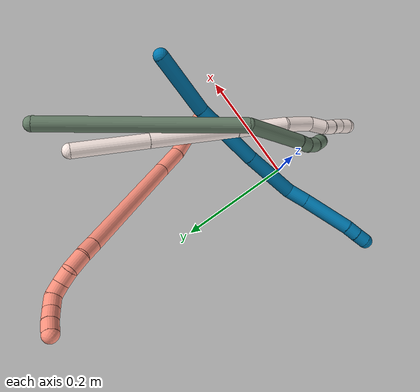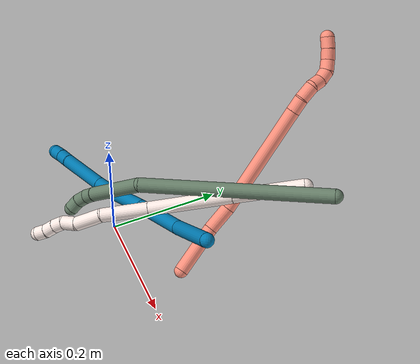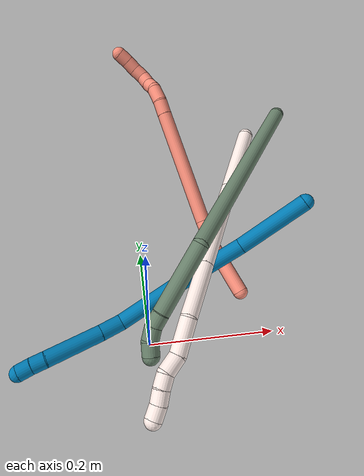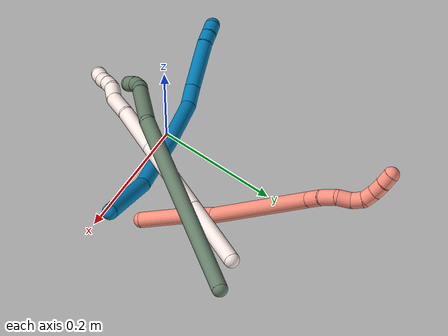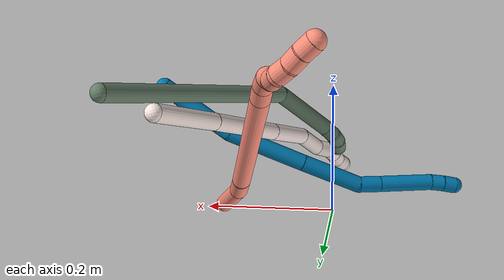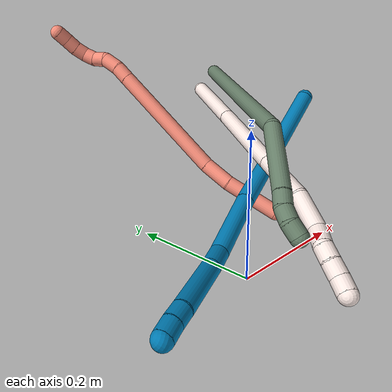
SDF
<sdf version="1.7">
 <world name="default">
  <model name="9">
   <static>0</static>
   <link name="9">
    <collision name="collision-cylinder-e_1_1_4">
     <pose>-0.044915 -0.034894 -0.0148 1.97195 -0.86987 -1.22378</pose>
     <geometry><cylinder><radius>0.0125</radius><length>0.117541</length></cylinder></geometry>
     <surface>
      <friction><ode><mu>1.16</mu><mu2>1.16</mu2><slip1>0</slip1><slip2>0</slip2></ode></friction>
      <contact><ode><kp>1e+06</kp><kd>1</kd><max_vel>0</max_vel><min_depth>0.001</min_depth></ode></contact>
     </surface>
    </collision>
    <visual name="visual-cylinder-e_1_1_4">
     <pose>-0.044915 -0.034894 -0.0148 1.97195 -0.86987 -1.22378</pose>
     <geometry><cylinder><radius>0.0125</radius><length>0.117541</length></cylinder></geometry>
     <material><ambient>0 0.490196 0.709804 1</ambient></material>
    </visual>
    <collision name="collision-cylinder-e_2_4_5">
     <pose>-0.141696 -0.092978 -0.05093 2.31441 -1.02488 -1.81651</pose>
     <geometry><cylinder><radius>0.0125</radius><length>0.121372</length></cylinder></geometry>
     <surface>
      <friction><ode><mu>1.16</mu><mu2>1.16</mu2><slip1>0</slip1><slip2>0</slip2></ode></friction>
      <contact><ode><kp>1e+06</kp><kd>1</kd><max_vel>0</max_vel><min_depth>0.001</min_depth></ode></contact>
     </surface>
    </collision>
    <visual name="visual-cylinder-e_2_4_5">
     <pose>-0.141696 -0.092978 -0.05093 2.31441 -1.02488 -1.81651</pose>
     <geometry><cylinder><radius>0.0125</radius><length>0.121372</length></cylinder></geometry>
     <material><ambient>0 0.490196 0.709804 1</ambient></material>
    </visual>
    <collision name="collision-cylinder-e_3_5_6">
     <pose>-0.236172 -0.133099 -0.087697 2.31011 -1.07744 -1.86922</pose>
     <geometry><cylinder><radius>0.0125</radius><length>0.09676</length></cylinder></geometry>
     <surface>
      <friction><ode><mu>1.16</mu><mu2>1.16</mu2><slip1>0</slip1><slip2>0</slip2></ode></friction>
      <contact><ode><kp>1e+06</kp><kd>1</kd><max_vel>0</max_vel><min_depth>0.001</min_depth></ode></contact>
     </surface>
    </collision>
    <visual name="visual-cylinder-e_3_5_6">
     <pose>-0.236172 -0.133099 -0.087697 2.31011 -1.07744 -1.86922</pose>
     <geometry><cylinder><radius>0.0125</radius><length>0.09676</length></cylinder></geometry>
     <material><ambient>0 0.490196 0.709804 1</ambient></material>
    </visual>
    <collision name="collision-cylinder-e_4_6_7">
     <pose>-0.294453 -0.150039 -0.111122 3.14046 -1.09944 -3.13974</pose>
     <geometry><cylinder><radius>0.0125</radius><length>0.035177</length></cylinder></geometry>
     <surface>
      <friction><ode><mu>1.16</mu><mu2>1.16</mu2><slip1>0</slip1><slip2>0</slip2></ode></friction>
      <contact><ode><kp>1e+06</kp><kd>1</kd><max_vel>0</max_vel><min_depth>0.001</min_depth></ode></contact>
     </surface>
    </collision>
    <visual name="visual-cylinder-e_4_6_7">
     <pose>-0.294453 -0.150039 -0.111122 3.14046 -1.09944 -3.13974</pose>
     <geometry><cylinder><radius>0.0125</radius><length>0.035177</length></cylinder></geometry>
     <material><ambient>0 0.490196 0.709804 1</ambient></material>
    </visual>
    <collision name="collision-cylinder-e_5_7_8">
     <pose>-0.348085 -0.150214 -0.140475 3.13381 -1.05813 -3.12829</pose>
     <geometry><cylinder><radius>0.0125</radius><length>0.087125</length></cylinder></geometry>
     <surface>
      <friction><ode><mu>1.16</mu><mu2>1.16</mu2><slip1>0</slip1><slip2>0</slip2></ode></friction>
      <contact><ode><kp>1e+06</kp><kd>1</kd><max_vel>0</max_vel><min_depth>0.001</min_depth></ode></contact>
     </surface>
    </collision>
    <visual name="visual-cylinder-e_5_7_8">
     <pose>-0.348085 -0.150214 -0.140475 3.13381 -1.05813 -3.12829</pose>
     <geometry><cylinder><radius>0.0125</radius><length>0.087125</length></cylinder></geometry>
     <material><ambient>0 0.490196 0.709804 1</ambient></material>
    </visual>
    <collision name="collision-cylinder-e_6_8_9">
     <pose>-0.395185 -0.151909 -0.167075 2.85734 -1.03284 -2.64786</pose>
     <geometry><cylinder><radius>0.0125</radius><length>0.02128</length></cylinder></geometry>
     <surface>
      <friction><ode><mu>1.16</mu><mu2>1.16</mu2><slip1>0</slip1><slip2>0</slip2></ode></friction>
      <contact><ode><kp>1e+06</kp><kd>1</kd><max_vel>0</max_vel><min_depth>0.001</min_depth></ode></contact>
     </surface>
    </collision>
    <visual name="visual-cylinder-e_6_8_9">
     <pose>-0.395185 -0.151909 -0.167075 2.85734 -1.03284 -2.64786</pose>
     <geometry><cylinder><radius>0.0125</radius><length>0.02128</length></cylinder></geometry>
     <material><ambient>0 0.490196 0.709804 1</ambient></material>
    </visual>
    <collision name="collision-cylinder-e_7_9_2">
     <pose>-0.413509 -0.155329 -0.176737 2.73796 -1.08801 -2.48926</pose>
     <geometry><cylinder><radius>0.0125</radius><length>0.020745</length></cylinder></geometry>
     <surface>
      <friction><ode><mu>1.16</mu><mu2>1.16</mu2><slip1>0</slip1><slip2>0</slip2></ode></friction>
      <contact><ode><kp>1e+06</kp><kd>1</kd><max_vel>0</max_vel><min_depth>0.001</min_depth></ode></contact>
     </surface>
    </collision>
    <visual name="visual-cylinder-e_7_9_2">
     <pose>-0.413509 -0.155329 -0.176737 2.73796 -1.08801 -2.48926</pose>
     <geometry><cylinder><radius>0.0125</radius><length>0.020745</length></cylinder></geometry>
     <material><ambient>0 0.490196 0.709804 1</ambient></material>
    </visual>
    <collision name="collision-sphere-2">
     <pose>-0.422696 -0.15722 -0.181165 0 -0 0</pose>
     <geometry><sphere><radius>0.0125</radius></sphere></geometry>
     <surface>
      <friction><ode><mu>1.16</mu><mu2>1.16</mu2><slip1>0</slip1><slip2>0</slip2></ode></friction>
      <contact><ode><kp>1e+06</kp><kd>1</kd><max_vel>0</max_vel><min_depth>0.001</min_depth></ode></contact>
     </surface>
    </collision>
    <visual name="visual-sphere-2">
     <pose>-0.422696 -0.15722 -0.181165 0 -0 0</pose>
     <geometry><sphere><radius>0.0125</radius></sphere></geometry>
     <material><ambient>0 0.490196 0.709804 1</ambient></material>
    </visual>
    <collision name="collision-sphere-9">
     <pose>-0.404322 -0.153438 -0.172308 0 -0 0</pose>
     <geometry><sphere><radius>0.0125</radius></sphere></geometry>
     <surface>
      <friction><ode><mu>1.16</mu><mu2>1.16</mu2><slip1>0</slip1><slip2>0</slip2></ode></friction>
      <contact><ode><kp>1e+06</kp><kd>1</kd><max_vel>0</max_vel><min_depth>0.001</min_depth></ode></contact>
     </surface>
    </collision>
    <visual name="visual-sphere-9">
     <pose>-0.404322 -0.153438 -0.172308 0 -0 0</pose>
     <geometry><sphere><radius>0.0125</radius></sphere></geometry>
     <material><ambient>0 0.490196 0.709804 1</ambient></material>
    </visual>
    <collision name="collision-sphere-4">
     <pose>-0.08983 -0.069787 -0.0296 0 -0 0</pose>
     <geometry><sphere><radius>0.0125</radius></sphere></geometry>
     <surface>
      <friction><ode><mu>1.16</mu><mu2>1.16</mu2><slip1>0</slip1><slip2>0</slip2></ode></friction>
      <contact><ode><kp>1e+06</kp><kd>1</kd><max_vel>0</max_vel><min_depth>0.001</min_depth></ode></contact>
     </surface>
    </collision>
    <visual name="visual-sphere-4">
     <pose>-0.08983 -0.069787 -0.0296 0 -0 0</pose>
     <geometry><sphere><radius>0.0125</radius></sphere></geometry>
     <material><ambient>0 0.490196 0.709804 1</ambient></material>
    </visual>
    <collision name="collision-sphere-1">
     <geometry><sphere><radius>0.0125</radius></sphere></geometry>
     <surface>
      <friction><ode><mu>1.16</mu><mu2>1.16</mu2><slip1>0</slip1><slip2>0</slip2></ode></friction>
      <contact><ode><kp>1e+06</kp><kd>1</kd><max_vel>0</max_vel><min_depth>0.001</min_depth></ode></contact>
     </surface>
    </collision>
    <visual name="visual-sphere-1">
     <geometry><sphere><radius>0.0125</radius></sphere></geometry>
     <material><ambient>0 0.490196 0.709804 1</ambient></material>
    </visual>
    <collision name="collision-sphere-8">
     <pose>-0.386048 -0.15038 -0.161842 0 -0 0</pose>
     <geometry><sphere><radius>0.0125</radius></sphere></geometry>
     <surface>
      <friction><ode><mu>1.16</mu><mu2>1.16</mu2><slip1>0</slip1><slip2>0</slip2></ode></friction>
      <contact><ode><kp>1e+06</kp><kd>1</kd><max_vel>0</max_vel><min_depth>0.001</min_depth></ode></contact>
     </surface>
    </collision>
    <visual name="visual-sphere-8">
     <pose>-0.386048 -0.15038 -0.161842 0 -0 0</pose>
     <geometry><sphere><radius>0.0125</radius></sphere></geometry>
     <material><ambient>0 0.490196 0.709804 1</ambient></material>
    </visual>
    <collision name="collision-sphere-5">
     <pose>-0.193561 -0.116169 -0.072259 0 -0 0</pose>
     <geometry><sphere><radius>0.0125</radius></sphere></geometry>
     <surface>
      <friction><ode><mu>1.16</mu><mu2>1.16</mu2><slip1>0</slip1><slip2>0</slip2></ode></friction>
      <contact><ode><kp>1e+06</kp><kd>1</kd><max_vel>0</max_vel><min_depth>0.001</min_depth></ode></contact>
     </surface>
    </collision>
    <visual name="visual-sphere-5">
     <pose>-0.193561 -0.116169 -0.072259 0 -0 0</pose>
     <geometry><sphere><radius>0.0125</radius></sphere></geometry>
     <material><ambient>0 0.490196 0.709804 1</ambient></material>
    </visual>
    <collision name="collision-sphere-6">
     <pose>-0.278782 -0.150029 -0.103135 0 -0 0</pose>
     <geometry><sphere><radius>0.0125</radius></sphere></geometry>
     <surface>
      <friction><ode><mu>1.16</mu><mu2>1.16</mu2><slip1>0</slip1><slip2>0</slip2></ode></friction>
      <contact><ode><kp>1e+06</kp><kd>1</kd><max_vel>0</max_vel><min_depth>0.001</min_depth></ode></contact>
     </surface>
    </collision>
    <visual name="visual-sphere-6">
     <pose>-0.278782 -0.150029 -0.103135 0 -0 0</pose>
     <geometry><sphere><radius>0.0125</radius></sphere></geometry>
     <material><ambient>0 0.490196 0.709804 1</ambient></material>
    </visual>
    <collision name="collision-sphere-7">
     <pose>-0.310123 -0.150048 -0.119109 0 -0 0</pose>
     <geometry><sphere><radius>0.0125</radius></sphere></geometry>
     <surface>
      <friction><ode><mu>1.16</mu><mu2>1.16</mu2><slip1>0</slip1><slip2>0</slip2></ode></friction>
      <contact><ode><kp>1e+06</kp><kd>1</kd><max_vel>0</max_vel><min_depth>0.001</min_depth></ode></contact>
     </surface>
    </collision>
    <visual name="visual-sphere-7">
     <pose>-0.310123 -0.150048 -0.119109 0 -0 0</pose>
     <geometry><sphere><radius>0.0125</radius></sphere></geometry>
     <material><ambient>0 0.490196 0.709804 1</ambient></material>
    </visual>
    <inertial>
     <pose>-0.206004 -0.10617 -0.079553 0 -0 0</pose>
     <mass>0.5</mass>
     <inertia>
      <ixx>-0.000264</ixx>
      <ixy>0</ixy>
      <ixz>0</ixz>
      <iyy>0.000113</iyy>
      <iyz>0</iyz>
      <izz>0.000523</izz>
     </inertia>
    </inertial>
   </link>
   <pose>0.245175 0.073677 0.207108 2.13372 -0.33386 0.814975</pose>
  </model>
  <model name="11">
   <static>0</static>
   <link name="11">
    <collision name="collision-cylinder-e_1_1_4">
     <pose>-0.016673 -0.049417 -0.033737 2.16982 -0.271749 -0.506631</pose>
     <geometry><cylinder><radius>0.0125</radius><length>0.124229</length></cylinder></geometry>
     <surface>
      <friction><ode><mu>1.16</mu><mu2>1.16</mu2><slip1>0</slip1><slip2>0</slip2></ode></friction>
      <contact><ode><kp>1e+06</kp><kd>1</kd><max_vel>0</max_vel><min_depth>0.001</min_depth></ode></contact>
     </surface>
    </collision>
    <visual name="visual-cylinder-e_1_1_4">
     <pose>-0.016673 -0.049417 -0.033737 2.16982 -0.271749 -0.506631</pose>
     <geometry><cylinder><radius>0.0125</radius><length>0.124229</length></cylinder></geometry>
     <material><ambient>1 0.933333 0.909804 1</ambient></material>
    </visual>
    <collision name="collision-cylinder-e_2_4_5">
     <pose>-0.052394 -0.15819 -0.107491 2.16399 -0.260074 -0.482206</pose>
     <geometry><cylinder><radius>0.0125</radius><length>0.148152</length></cylinder></geometry>
     <surface>
      <friction><ode><mu>1.16</mu><mu2>1.16</mu2><slip1>0</slip1><slip2>0</slip2></ode></friction>
      <contact><ode><kp>1e+06</kp><kd>1</kd><max_vel>0</max_vel><min_depth>0.001</min_depth></ode></contact>
     </surface>
    </collision>
    <visual name="visual-cylinder-e_2_4_5">
     <pose>-0.052394 -0.15819 -0.107491 2.16399 -0.260074 -0.482206</pose>
     <geometry><cylinder><radius>0.0125</radius><length>0.148152</length></cylinder></geometry>
     <material><ambient>1 0.933333 0.909804 1</ambient></material>
    </visual>
    <collision name="collision-cylinder-e_3_5_6">
     <pose>-0.082689 -0.251865 -0.171114 2.17332 -0.263706 -0.49408</pose>
     <geometry><cylinder><radius>0.0125</radius><length>0.086292</length></cylinder></geometry>
     <surface>
      <friction><ode><mu>1.16</mu><mu2>1.16</mu2><slip1>0</slip1><slip2>0</slip2></ode></friction>
      <contact><ode><kp>1e+06</kp><kd>1</kd><max_vel>0</max_vel><min_depth>0.001</min_depth></ode></contact>
     </surface>
    </collision>
    <visual name="visual-cylinder-e_3_5_6">
     <pose>-0.082689 -0.251865 -0.171114 2.17332 -0.263706 -0.49408</pose>
     <geometry><cylinder><radius>0.0125</radius><length>0.086292</length></cylinder></geometry>
     <material><ambient>1 0.933333 0.909804 1</ambient></material>
    </visual>
    <collision name="collision-cylinder-e_4_6_7">
     <pose>-0.094895 -0.310238 -0.205991 2.00895 -0.036107 -0.056782</pose>
     <geometry><cylinder><radius>0.0125</radius><length>0.053161</length></cylinder></geometry>
     <surface>
      <friction><ode><mu>1.16</mu><mu2>1.16</mu2><slip1>0</slip1><slip2>0</slip2></ode></friction>
      <contact><ode><kp>1e+06</kp><kd>1</kd><max_vel>0</max_vel><min_depth>0.001</min_depth></ode></contact>
     </surface>
    </collision>
    <visual name="visual-cylinder-e_4_6_7">
     <pose>-0.094895 -0.310238 -0.205991 2.00895 -0.036107 -0.056782</pose>
     <geometry><cylinder><radius>0.0125</radius><length>0.053161</length></cylinder></geometry>
     <material><ambient>1 0.933333 0.909804 1</ambient></material>
    </visual>
    <collision name="collision-cylinder-e_5_7_8">
     <pose>-0.095877 -0.343926 -0.227129 2.36822 -0.001646 -0.004042</pose>
     <geometry><cylinder><radius>0.0125</radius><length>0.027583</length></cylinder></geometry>
     <surface>
      <friction><ode><mu>1.16</mu><mu2>1.16</mu2><slip1>0</slip1><slip2>0</slip2></ode></friction>
      <contact><ode><kp>1e+06</kp><kd>1</kd><max_vel>0</max_vel><min_depth>0.001</min_depth></ode></contact>
     </surface>
    </collision>
    <visual name="visual-cylinder-e_5_7_8">
     <pose>-0.095877 -0.343926 -0.227129 2.36822 -0.001646 -0.004042</pose>
     <geometry><cylinder><radius>0.0125</radius><length>0.027583</length></cylinder></geometry>
     <material><ambient>1 0.933333 0.909804 1</ambient></material>
    </visual>
    <collision name="collision-cylinder-e_6_8_9">
     <pose>-0.095943 -0.362897 -0.240931 1.96953 -0.004256 -0.006411</pose>
     <geometry><cylinder><radius>0.0125</radius><length>0.020264</length></cylinder></geometry>
     <surface>
      <friction><ode><mu>1.16</mu><mu2>1.16</mu2><slip1>0</slip1><slip2>0</slip2></ode></friction>
      <contact><ode><kp>1e+06</kp><kd>1</kd><max_vel>0</max_vel><min_depth>0.001</min_depth></ode></contact>
     </surface>
    </collision>
    <visual name="visual-cylinder-e_6_8_9">
     <pose>-0.095943 -0.362897 -0.240931 1.96953 -0.004256 -0.006411</pose>
     <geometry><cylinder><radius>0.0125</radius><length>0.020264</length></cylinder></geometry>
     <material><ambient>1 0.933333 0.909804 1</ambient></material>
    </visual>
    <collision name="collision-cylinder-e_7_9_10">
     <pose>-0.095872 -0.381983 -0.24767 1.85091 0.011311 0.015024</pose>
     <geometry><cylinder><radius>0.0125</radius><length>0.020291</length></cylinder></geometry>
     <surface>
      <friction><ode><mu>1.16</mu><mu2>1.16</mu2><slip1>0</slip1><slip2>0</slip2></ode></friction>
      <contact><ode><kp>1e+06</kp><kd>1</kd><max_vel>0</max_vel><min_depth>0.001</min_depth></ode></contact>
     </surface>
    </collision>
    <visual name="visual-cylinder-e_7_9_10">
     <pose>-0.095872 -0.381983 -0.24767 1.85091 0.011311 0.015024</pose>
     <geometry><cylinder><radius>0.0125</radius><length>0.020291</length></cylinder></geometry>
     <material><ambient>1 0.933333 0.909804 1</ambient></material>
    </visual>
    <collision name="collision-cylinder-e_8_10_2">
     <pose>-0.095811 -0.400639 -0.255052 2.04559 -0.005416 -0.008873</pose>
     <geometry><cylinder><radius>0.0125</radius><length>0.020028</length></cylinder></geometry>
     <surface>
      <friction><ode><mu>1.16</mu><mu2>1.16</mu2><slip1>0</slip1><slip2>0</slip2></ode></friction>
      <contact><ode><kp>1e+06</kp><kd>1</kd><max_vel>0</max_vel><min_depth>0.001</min_depth></ode></contact>
     </surface>
    </collision>
    <visual name="visual-cylinder-e_8_10_2">
     <pose>-0.095811 -0.400639 -0.255052 2.04559 -0.005416 -0.008873</pose>
     <geometry><cylinder><radius>0.0125</radius><length>0.020028</length></cylinder></geometry>
     <material><ambient>1 0.933333 0.909804 1</ambient></material>
    </visual>
    <collision name="collision-sphere-2">
     <pose>-0.095865 -0.409545 -0.25963 0 -0 0</pose>
     <geometry><sphere><radius>0.0125</radius></sphere></geometry>
     <surface>
      <friction><ode><mu>1.16</mu><mu2>1.16</mu2><slip1>0</slip1><slip2>0</slip2></ode></friction>
      <contact><ode><kp>1e+06</kp><kd>1</kd><max_vel>0</max_vel><min_depth>0.001</min_depth></ode></contact>
     </surface>
    </collision>
    <visual name="visual-sphere-2">
     <pose>-0.095865 -0.409545 -0.25963 0 -0 0</pose>
     <geometry><sphere><radius>0.0125</radius></sphere></geometry>
     <material><ambient>1 0.933333 0.909804 1</ambient></material>
    </visual>
    <collision name="collision-sphere-10">
     <pose>-0.095757 -0.391733 -0.250475 0 -0 0</pose>
     <geometry><sphere><radius>0.0125</radius></sphere></geometry>
     <surface>
      <friction><ode><mu>1.16</mu><mu2>1.16</mu2><slip1>0</slip1><slip2>0</slip2></ode></friction>
      <contact><ode><kp>1e+06</kp><kd>1</kd><max_vel>0</max_vel><min_depth>0.001</min_depth></ode></contact>
     </surface>
    </collision>
    <visual name="visual-sphere-10">
     <pose>-0.095757 -0.391733 -0.250475 0 -0 0</pose>
     <geometry><sphere><radius>0.0125</radius></sphere></geometry>
     <material><ambient>1 0.933333 0.909804 1</ambient></material>
    </visual>
    <collision name="collision-sphere-9">
     <pose>-0.095986 -0.372234 -0.244865 0 -0 0</pose>
     <geometry><sphere><radius>0.0125</radius></sphere></geometry>
     <surface>
      <friction><ode><mu>1.16</mu><mu2>1.16</mu2><slip1>0</slip1><slip2>0</slip2></ode></friction>
      <contact><ode><kp>1e+06</kp><kd>1</kd><max_vel>0</max_vel><min_depth>0.001</min_depth></ode></contact>
     </surface>
    </collision>
    <visual name="visual-sphere-9">
     <pose>-0.095986 -0.372234 -0.244865 0 -0 0</pose>
     <geometry><sphere><radius>0.0125</radius></sphere></geometry>
     <material><ambient>1 0.933333 0.909804 1</ambient></material>
    </visual>
    <collision name="collision-sphere-4">
     <pose>-0.033345 -0.098834 -0.067474 0 -0 0</pose>
     <geometry><sphere><radius>0.0125</radius></sphere></geometry>
     <surface>
      <friction><ode><mu>1.16</mu><mu2>1.16</mu2><slip1>0</slip1><slip2>0</slip2></ode></friction>
      <contact><ode><kp>1e+06</kp><kd>1</kd><max_vel>0</max_vel><min_depth>0.001</min_depth></ode></contact>
     </surface>
    </collision>
    <visual name="visual-sphere-4">
     <pose>-0.033345 -0.098834 -0.067474 0 -0 0</pose>
     <geometry><sphere><radius>0.0125</radius></sphere></geometry>
     <material><ambient>1 0.933333 0.909804 1</ambient></material>
    </visual>
    <collision name="collision-sphere-1">
     <geometry><sphere><radius>0.0125</radius></sphere></geometry>
     <surface>
      <friction><ode><mu>1.16</mu><mu2>1.16</mu2><slip1>0</slip1><slip2>0</slip2></ode></friction>
      <contact><ode><kp>1e+06</kp><kd>1</kd><max_vel>0</max_vel><min_depth>0.001</min_depth></ode></contact>
     </surface>
    </collision>
    <visual name="visual-sphere-1">
     <geometry><sphere><radius>0.0125</radius></sphere></geometry>
     <material><ambient>1 0.933333 0.909804 1</ambient></material>
    </visual>
    <collision name="collision-sphere-8">
     <pose>-0.0959 -0.353559 -0.236998 0 -0 0</pose>
     <geometry><sphere><radius>0.0125</radius></sphere></geometry>
     <surface>
      <friction><ode><mu>1.16</mu><mu2>1.16</mu2><slip1>0</slip1><slip2>0</slip2></ode></friction>
      <contact><ode><kp>1e+06</kp><kd>1</kd><max_vel>0</max_vel><min_depth>0.001</min_depth></ode></contact>
     </surface>
    </collision>
    <visual name="visual-sphere-8">
     <pose>-0.0959 -0.353559 -0.236998 0 -0 0</pose>
     <geometry><sphere><radius>0.0125</radius></sphere></geometry>
     <material><ambient>1 0.933333 0.909804 1</ambient></material>
    </visual>
    <collision name="collision-sphere-5">
     <pose>-0.071443 -0.217545 -0.147508 0 -0 0</pose>
     <geometry><sphere><radius>0.0125</radius></sphere></geometry>
     <surface>
      <friction><ode><mu>1.16</mu><mu2>1.16</mu2><slip1>0</slip1><slip2>0</slip2></ode></friction>
      <contact><ode><kp>1e+06</kp><kd>1</kd><max_vel>0</max_vel><min_depth>0.001</min_depth></ode></contact>
     </surface>
    </collision>
    <visual name="visual-sphere-5">
     <pose>-0.071443 -0.217545 -0.147508 0 -0 0</pose>
     <geometry><sphere><radius>0.0125</radius></sphere></geometry>
     <material><ambient>1 0.933333 0.909804 1</ambient></material>
    </visual>
    <collision name="collision-sphere-6">
     <pose>-0.093936 -0.286184 -0.194721 0 -0 0</pose>
     <geometry><sphere><radius>0.0125</radius></sphere></geometry>
     <surface>
      <friction><ode><mu>1.16</mu><mu2>1.16</mu2><slip1>0</slip1><slip2>0</slip2></ode></friction>
      <contact><ode><kp>1e+06</kp><kd>1</kd><max_vel>0</max_vel><min_depth>0.001</min_depth></ode></contact>
     </surface>
    </collision>
    <visual name="visual-sphere-6">
     <pose>-0.093936 -0.286184 -0.194721 0 -0 0</pose>
     <geometry><sphere><radius>0.0125</radius></sphere></geometry>
     <material><ambient>1 0.933333 0.909804 1</ambient></material>
    </visual>
    <collision name="collision-sphere-7">
     <pose>-0.095855 -0.334292 -0.217261 0 -0 0</pose>
     <geometry><sphere><radius>0.0125</radius></sphere></geometry>
     <surface>
      <friction><ode><mu>1.16</mu><mu2>1.16</mu2><slip1>0</slip1><slip2>0</slip2></ode></friction>
      <contact><ode><kp>1e+06</kp><kd>1</kd><max_vel>0</max_vel><min_depth>0.001</min_depth></ode></contact>
     </surface>
    </collision>
    <visual name="visual-sphere-7">
     <pose>-0.095855 -0.334292 -0.217261 0 -0 0</pose>
     <geometry><sphere><radius>0.0125</radius></sphere></geometry>
     <material><ambient>1 0.933333 0.909804 1</ambient></material>
    </visual>
    <inertial>
     <pose>-0.060933 -0.200833 -0.134227 0 -0 0</pose>
     <mass>0.5</mass>
     <inertia>
      <ixx>0.00021</ixx>
      <ixy>0</ixy>
      <ixz>0</ixz>
      <iyy>-0.000465</iyy>
      <iyz>0</iyz>
      <izz>0.000528</izz>
     </inertia>
    </inertial>
   </link>
   <pose>0.204345 0.272262 0.206075 1.93047 0.686069 2.07767</pose>
  </model>
  <model name="16">
   <static>0</static>
   <link name="16">
    <collision name="collision-cylinder-e_1_1_4">
     <pose>-0.00674 0.004855 0.044412 -0.10889 -0.149738 0.008176</pose>
     <geometry><cylinder><radius>0.0125</radius><length>0.090364</length></cylinder></geometry>
     <surface>
      <friction><ode><mu>1.16</mu><mu2>1.16</mu2><slip1>0</slip1><slip2>0</slip2></ode></friction>
      <contact><ode><kp>1e+06</kp><kd>1</kd><max_vel>0</max_vel><min_depth>0.001</min_depth></ode></contact>
     </surface>
    </collision>
    <visual name="visual-cylinder-e_1_1_4">
     <pose>-0.00674 0.004855 0.044412 -0.10889 -0.149738 0.008176</pose>
     <geometry><cylinder><radius>0.0125</radius><length>0.090364</length></cylinder></geometry>
     <material><ambient>1 0.576471 0.494118 1</ambient></material>
    </visual>
    <collision name="collision-cylinder-e_2_4_5">
     <pose>-0.013336 0.013328 0.112459 -0.151878 0.006035 -0.000459</pose>
     <geometry><cylinder><radius>0.0125</radius><length>0.047823</length></cylinder></geometry>
     <surface>
      <friction><ode><mu>1.16</mu><mu2>1.16</mu2><slip1>0</slip1><slip2>0</slip2></ode></friction>
      <contact><ode><kp>1e+06</kp><kd>1</kd><max_vel>0</max_vel><min_depth>0.001</min_depth></ode></contact>
     </surface>
    </collision>
    <visual name="visual-cylinder-e_2_4_5">
     <pose>-0.013336 0.013328 0.112459 -0.151878 0.006035 -0.000459</pose>
     <geometry><cylinder><radius>0.0125</radius><length>0.047823</length></cylinder></geometry>
     <material><ambient>1 0.576471 0.494118 1</ambient></material>
    </visual>
    <collision name="collision-cylinder-e_3_5_6">
     <pose>-0.003154 0.016782 0.238236 0.001601 0.097954 7.8e-05</pose>
     <geometry><cylinder><radius>0.0125</radius><length>0.205267</length></cylinder></geometry>
     <surface>
      <friction><ode><mu>1.16</mu><mu2>1.16</mu2><slip1>0</slip1><slip2>0</slip2></ode></friction>
      <contact><ode><kp>1e+06</kp><kd>1</kd><max_vel>0</max_vel><min_depth>0.001</min_depth></ode></contact>
     </surface>
    </collision>
    <visual name="visual-cylinder-e_3_5_6">
     <pose>-0.003154 0.016782 0.238236 0.001601 0.097954 7.8e-05</pose>
     <geometry><cylinder><radius>0.0125</radius><length>0.205267</length></cylinder></geometry>
     <material><ambient>1 0.576471 0.494118 1</ambient></material>
    </visual>
    <collision name="collision-cylinder-e_4_6_7">
     <pose>0.008314 0.016681 0.353189 -0.004858 0.111206 -0.00027</pose>
     <geometry><cylinder><radius>0.0125</radius><length>0.025784</length></cylinder></geometry>
     <surface>
      <friction><ode><mu>1.16</mu><mu2>1.16</mu2><slip1>0</slip1><slip2>0</slip2></ode></friction>
      <contact><ode><kp>1e+06</kp><kd>1</kd><max_vel>0</max_vel><min_depth>0.001</min_depth></ode></contact>
     </surface>
    </collision>
    <visual name="visual-cylinder-e_4_6_7">
     <pose>0.008314 0.016681 0.353189 -0.004858 0.111206 -0.00027</pose>
     <geometry><cylinder><radius>0.0125</radius><length>0.025784</length></cylinder></geometry>
     <material><ambient>1 0.576471 0.494118 1</ambient></material>
    </visual>
    <collision name="collision-cylinder-e_5_7_8">
     <pose>0.008914 0.019063 0.380013 -0.164134 -0.058387 0.004804</pose>
     <geometry><cylinder><radius>0.0125</radius><length>0.028452</length></cylinder></geometry>
     <surface>
      <friction><ode><mu>1.16</mu><mu2>1.16</mu2><slip1>0</slip1><slip2>0</slip2></ode></friction>
      <contact><ode><kp>1e+06</kp><kd>1</kd><max_vel>0</max_vel><min_depth>0.001</min_depth></ode></contact>
     </surface>
    </collision>
    <visual name="visual-cylinder-e_5_7_8">
     <pose>0.008914 0.019063 0.380013 -0.164134 -0.058387 0.004804</pose>
     <geometry><cylinder><radius>0.0125</radius><length>0.028452</length></cylinder></geometry>
     <material><ambient>1 0.576471 0.494118 1</ambient></material>
    </visual>
    <collision name="collision-cylinder-e_6_8_9">
     <pose>0.003614 0.026694 0.402653 -0.551642 -0.415524 0.119189</pose>
     <geometry><cylinder><radius>0.0125</radius><length>0.02215</length></cylinder></geometry>
     <surface>
      <friction><ode><mu>1.16</mu><mu2>1.16</mu2><slip1>0</slip1><slip2>0</slip2></ode></friction>
      <contact><ode><kp>1e+06</kp><kd>1</kd><max_vel>0</max_vel><min_depth>0.001</min_depth></ode></contact>
     </surface>
    </collision>
    <visual name="visual-cylinder-e_6_8_9">
     <pose>0.003614 0.026694 0.402653 -0.551642 -0.415524 0.119189</pose>
     <geometry><cylinder><radius>0.0125</radius><length>0.02215</length></cylinder></geometry>
     <material><ambient>1 0.576471 0.494118 1</ambient></material>
    </visual>
    <collision name="collision-cylinder-e_7_9_10">
     <pose>-0.00333 0.033402 0.42095 -0.14355 -0.248006 0.017923</pose>
     <geometry><cylinder><radius>0.0125</radius><length>0.020152</length></cylinder></geometry>
     <surface>
      <friction><ode><mu>1.16</mu><mu2>1.16</mu2><slip1>0</slip1><slip2>0</slip2></ode></friction>
      <contact><ode><kp>1e+06</kp><kd>1</kd><max_vel>0</max_vel><min_depth>0.001</min_depth></ode></contact>
     </surface>
    </collision>
    <visual name="visual-cylinder-e_7_9_10">
     <pose>-0.00333 0.033402 0.42095 -0.14355 -0.248006 0.017923</pose>
     <geometry><cylinder><radius>0.0125</radius><length>0.020152</length></cylinder></geometry>
     <material><ambient>1 0.576471 0.494118 1</ambient></material>
    </visual>
    <collision name="collision-cylinder-e_8_10_11">
     <pose>-0.008828 0.031376 0.439514 0.367254 -0.307178 -0.057486</pose>
     <geometry><cylinder><radius>0.0125</radius><length>0.020002</length></cylinder></geometry>
     <surface>
      <friction><ode><mu>1.16</mu><mu2>1.16</mu2><slip1>0</slip1><slip2>0</slip2></ode></friction>
      <contact><ode><kp>1e+06</kp><kd>1</kd><max_vel>0</max_vel><min_depth>0.001</min_depth></ode></contact>
     </surface>
    </collision>
    <visual name="visual-cylinder-e_8_10_11">
     <pose>-0.008828 0.031376 0.439514 0.367254 -0.307178 -0.057486</pose>
     <geometry><cylinder><radius>0.0125</radius><length>0.020002</length></cylinder></geometry>
     <material><ambient>1 0.576471 0.494118 1</ambient></material>
    </visual>
    <collision name="collision-cylinder-e_9_11_12">
     <pose>-0.01357 0.023301 0.457097 0.49182 -0.17267 -0.043439</pose>
     <geometry><cylinder><radius>0.0125</radius><length>0.020004</length></cylinder></geometry>
     <surface>
      <friction><ode><mu>1.16</mu><mu2>1.16</mu2><slip1>0</slip1><slip2>0</slip2></ode></friction>
      <contact><ode><kp>1e+06</kp><kd>1</kd><max_vel>0</max_vel><min_depth>0.001</min_depth></ode></contact>
     </surface>
    </collision>
    <visual name="visual-cylinder-e_9_11_12">
     <pose>-0.01357 0.023301 0.457097 0.49182 -0.17267 -0.043439</pose>
     <geometry><cylinder><radius>0.0125</radius><length>0.020004</length></cylinder></geometry>
     <material><ambient>1 0.576471 0.494118 1</ambient></material>
    </visual>
    <collision name="collision-cylinder-e_10_12_2">
     <pose>-0.017617 0.013195 0.473837 0.59509 -0.234924 -0.072341</pose>
     <geometry><cylinder><radius>0.0125</radius><length>0.020003</length></cylinder></geometry>
     <surface>
      <friction><ode><mu>1.16</mu><mu2>1.16</mu2><slip1>0</slip1><slip2>0</slip2></ode></friction>
      <contact><ode><kp>1e+06</kp><kd>1</kd><max_vel>0</max_vel><min_depth>0.001</min_depth></ode></contact>
     </surface>
    </collision>
    <visual name="visual-cylinder-e_10_12_2">
     <pose>-0.017617 0.013195 0.473837 0.59509 -0.234924 -0.072341</pose>
     <geometry><cylinder><radius>0.0125</radius><length>0.020003</length></cylinder></geometry>
     <material><ambient>1 0.576471 0.494118 1</ambient></material>
    </visual>
    <collision name="collision-sphere-2">
     <pose>-0.019945 0.007742 0.481892 0 -0 0</pose>
     <geometry><sphere><radius>0.0125</radius></sphere></geometry>
     <surface>
      <friction><ode><mu>1.16</mu><mu2>1.16</mu2><slip1>0</slip1><slip2>0</slip2></ode></friction>
      <contact><ode><kp>1e+06</kp><kd>1</kd><max_vel>0</max_vel><min_depth>0.001</min_depth></ode></contact>
     </surface>
    </collision>
    <visual name="visual-sphere-2">
     <pose>-0.019945 0.007742 0.481892 0 -0 0</pose>
     <geometry><sphere><radius>0.0125</radius></sphere></geometry>
     <material><ambient>1 0.576471 0.494118 1</ambient></material>
    </visual>
    <collision name="collision-sphere-12">
     <pose>-0.015289 0.018647 0.465782 0 -0 0</pose>
     <geometry><sphere><radius>0.0125</radius></sphere></geometry>
     <surface>
      <friction><ode><mu>1.16</mu><mu2>1.16</mu2><slip1>0</slip1><slip2>0</slip2></ode></friction>
      <contact><ode><kp>1e+06</kp><kd>1</kd><max_vel>0</max_vel><min_depth>0.001</min_depth></ode></contact>
     </surface>
    </collision>
    <visual name="visual-sphere-12">
     <pose>-0.015289 0.018647 0.465782 0 -0 0</pose>
     <geometry><sphere><radius>0.0125</radius></sphere></geometry>
     <material><ambient>1 0.576471 0.494118 1</ambient></material>
    </visual>
    <collision name="collision-sphere-11">
     <pose>-0.011852 0.027954 0.448411 0 -0 0</pose>
     <geometry><sphere><radius>0.0125</radius></sphere></geometry>
     <surface>
      <friction><ode><mu>1.16</mu><mu2>1.16</mu2><slip1>0</slip1><slip2>0</slip2></ode></friction>
      <contact><ode><kp>1e+06</kp><kd>1</kd><max_vel>0</max_vel><min_depth>0.001</min_depth></ode></contact>
     </surface>
    </collision>
    <visual name="visual-sphere-11">
     <pose>-0.011852 0.027954 0.448411 0 -0 0</pose>
     <geometry><sphere><radius>0.0125</radius></sphere></geometry>
     <material><ambient>1 0.576471 0.494118 1</ambient></material>
    </visual>
    <collision name="collision-sphere-10">
     <pose>-0.005804 0.034799 0.430617 0 -0 0</pose>
     <geometry><sphere><radius>0.0125</radius></sphere></geometry>
     <surface>
      <friction><ode><mu>1.16</mu><mu2>1.16</mu2><slip1>0</slip1><slip2>0</slip2></ode></friction>
      <contact><ode><kp>1e+06</kp><kd>1</kd><max_vel>0</max_vel><min_depth>0.001</min_depth></ode></contact>
     </surface>
    </collision>
    <visual name="visual-sphere-10">
     <pose>-0.005804 0.034799 0.430617 0 -0 0</pose>
     <geometry><sphere><radius>0.0125</radius></sphere></geometry>
     <material><ambient>1 0.576471 0.494118 1</ambient></material>
    </visual>
    <collision name="collision-sphere-9">
     <pose>-0.000857 0.032004 0.411282 0 -0 0</pose>
     <geometry><sphere><radius>0.0125</radius></sphere></geometry>
     <surface>
      <friction><ode><mu>1.16</mu><mu2>1.16</mu2><slip1>0</slip1><slip2>0</slip2></ode></friction>
      <contact><ode><kp>1e+06</kp><kd>1</kd><max_vel>0</max_vel><min_depth>0.001</min_depth></ode></contact>
     </surface>
    </collision>
    <visual name="visual-sphere-9">
     <pose>-0.000857 0.032004 0.411282 0 -0 0</pose>
     <geometry><sphere><radius>0.0125</radius></sphere></geometry>
     <material><ambient>1 0.576471 0.494118 1</ambient></material>
    </visual>
    <collision name="collision-sphere-4">
     <pose>-0.01348 0.00971 0.088823 0 -0 0</pose>
     <geometry><sphere><radius>0.0125</radius></sphere></geometry>
     <surface>
      <friction><ode><mu>1.16</mu><mu2>1.16</mu2><slip1>0</slip1><slip2>0</slip2></ode></friction>
      <contact><ode><kp>1e+06</kp><kd>1</kd><max_vel>0</max_vel><min_depth>0.001</min_depth></ode></contact>
     </surface>
    </collision>
    <visual name="visual-sphere-4">
     <pose>-0.01348 0.00971 0.088823 0 -0 0</pose>
     <geometry><sphere><radius>0.0125</radius></sphere></geometry>
     <material><ambient>1 0.576471 0.494118 1</ambient></material>
    </visual>
    <collision name="collision-sphere-1">
     <geometry><sphere><radius>0.0125</radius></sphere></geometry>
     <surface>
      <friction><ode><mu>1.16</mu><mu2>1.16</mu2><slip1>0</slip1><slip2>0</slip2></ode></friction>
      <contact><ode><kp>1e+06</kp><kd>1</kd><max_vel>0</max_vel><min_depth>0.001</min_depth></ode></contact>
     </surface>
    </collision>
    <visual name="visual-sphere-1">
     <geometry><sphere><radius>0.0125</radius></sphere></geometry>
     <material><ambient>1 0.576471 0.494118 1</ambient></material>
    </visual>
    <collision name="collision-sphere-8">
     <pose>0.008084 0.021384 0.394023 0 -0 0</pose>
     <geometry><sphere><radius>0.0125</radius></sphere></geometry>
     <surface>
      <friction><ode><mu>1.16</mu><mu2>1.16</mu2><slip1>0</slip1><slip2>0</slip2></ode></friction>
      <contact><ode><kp>1e+06</kp><kd>1</kd><max_vel>0</max_vel><min_depth>0.001</min_depth></ode></contact>
     </surface>
    </collision>
    <visual name="visual-sphere-8">
     <pose>0.008084 0.021384 0.394023 0 -0 0</pose>
     <geometry><sphere><radius>0.0125</radius></sphere></geometry>
     <material><ambient>1 0.576471 0.494118 1</ambient></material>
    </visual>
    <collision name="collision-sphere-5">
     <pose>-0.013192 0.016946 0.136095 0 -0 0</pose>
     <geometry><sphere><radius>0.0125</radius></sphere></geometry>
     <surface>
      <friction><ode><mu>1.16</mu><mu2>1.16</mu2><slip1>0</slip1><slip2>0</slip2></ode></friction>
      <contact><ode><kp>1e+06</kp><kd>1</kd><max_vel>0</max_vel><min_depth>0.001</min_depth></ode></contact>
     </surface>
    </collision>
    <visual name="visual-sphere-5">
     <pose>-0.013192 0.016946 0.136095 0 -0 0</pose>
     <geometry><sphere><radius>0.0125</radius></sphere></geometry>
     <material><ambient>1 0.576471 0.494118 1</ambient></material>
    </visual>
    <collision name="collision-sphere-6">
     <pose>0.006883 0.016618 0.340377 0 -0 0</pose>
     <geometry><sphere><radius>0.0125</radius></sphere></geometry>
     <surface>
      <friction><ode><mu>1.16</mu><mu2>1.16</mu2><slip1>0</slip1><slip2>0</slip2></ode></friction>
      <contact><ode><kp>1e+06</kp><kd>1</kd><max_vel>0</max_vel><min_depth>0.001</min_depth></ode></contact>
     </surface>
    </collision>
    <visual name="visual-sphere-6">
     <pose>0.006883 0.016618 0.340377 0 -0 0</pose>
     <geometry><sphere><radius>0.0125</radius></sphere></geometry>
     <material><ambient>1 0.576471 0.494118 1</ambient></material>
    </visual>
    <collision name="collision-sphere-7">
     <pose>0.009744 0.016743 0.366002 0 -0 0</pose>
     <geometry><sphere><radius>0.0125</radius></sphere></geometry>
     <surface>
      <friction><ode><mu>1.16</mu><mu2>1.16</mu2><slip1>0</slip1><slip2>0</slip2></ode></friction>
      <contact><ode><kp>1e+06</kp><kd>1</kd><max_vel>0</max_vel><min_depth>0.001</min_depth></ode></contact>
     </surface>
    </collision>
    <visual name="visual-sphere-7">
     <pose>0.009744 0.016743 0.366002 0 -0 0</pose>
     <geometry><sphere><radius>0.0125</radius></sphere></geometry>
     <material><ambient>1 0.576471 0.494118 1</ambient></material>
    </visual>
    <inertial>
     <pose>-0.004428 0.016231 0.246053 0 -0 0</pose>
     <mass>0.5</mass>
     <inertia>
      <ixx>0.000812</ixx>
      <ixy>0</ixy>
      <ixz>0</ixz>
      <iyy>0.000818</iyy>
      <iyz>0</iyz>
      <izz>-2.9e-05</izz>
     </inertia>
    </inertial>
   </link>
   <pose>0.160718 0.065807 0.026951 -0.714762 -0.599156 -0.148501</pose>
  </model>
  <model name="17">
   <static>0</static>
   <link name="17">
    <collision name="collision-cylinder-e_1_1_4">
     <pose>-0.090956 -0.129115 -0.048617 1.93091 -0.582862 -0.818068</pose>
     <geometry><cylinder><radius>0.0125</radius><length>0.330498</length></cylinder></geometry>
     <surface>
      <friction><ode><mu>1.16</mu><mu2>1.16</mu2><slip1>0</slip1><slip2>0</slip2></ode></friction>
      <contact><ode><kp>1e+06</kp><kd>1</kd><max_vel>0</max_vel><min_depth>0.001</min_depth></ode></contact>
     </surface>
    </collision>
    <visual name="visual-cylinder-e_1_1_4">
     <pose>-0.090956 -0.129115 -0.048617 1.93091 -0.582862 -0.818068</pose>
     <geometry><cylinder><radius>0.0125</radius><length>0.330498</length></cylinder></geometry>
     <material><ambient>0.415686 0.509804 0.423529 1</ambient></material>
    </visual>
    <collision name="collision-cylinder-e_2_4_5">
     <pose>-0.202896 -0.28889 -0.136953 2.48422 -0.396115 -1.06374</pose>
     <geometry><cylinder><radius>0.0125</radius><length>0.108774</length></cylinder></geometry>
     <surface>
      <friction><ode><mu>1.16</mu><mu2>1.16</mu2><slip1>0</slip1><slip2>0</slip2></ode></friction>
      <contact><ode><kp>1e+06</kp><kd>1</kd><max_vel>0</max_vel><min_depth>0.001</min_depth></ode></contact>
     </surface>
    </collision>
    <visual name="visual-cylinder-e_2_4_5">
     <pose>-0.202896 -0.28889 -0.136953 2.48422 -0.396115 -1.06374</pose>
     <geometry><cylinder><radius>0.0125</radius><length>0.108774</length></cylinder></geometry>
     <material><ambient>0.415686 0.509804 0.423529 1</ambient></material>
    </visual>
    <collision name="collision-cylinder-e_3_5_6">
     <pose>-0.227294 -0.324654 -0.184901 2.58631 -0.338933 -1.0814</pose>
     <geometry><cylinder><radius>0.0125</radius><length>0.020536</length></cylinder></geometry>
     <surface>
      <friction><ode><mu>1.16</mu><mu2>1.16</mu2><slip1>0</slip1><slip2>0</slip2></ode></friction>
      <contact><ode><kp>1e+06</kp><kd>1</kd><max_vel>0</max_vel><min_depth>0.001</min_depth></ode></contact>
     </surface>
    </collision>
    <visual name="visual-cylinder-e_3_5_6">
     <pose>-0.227294 -0.324654 -0.184901 2.58631 -0.338933 -1.0814</pose>
     <geometry><cylinder><radius>0.0125</radius><length>0.020536</length></cylinder></geometry>
     <material><ambient>0.415686 0.509804 0.423529 1</ambient></material>
    </visual>
    <collision name="collision-cylinder-e_4_6_7">
     <pose>-0.232056 -0.336855 -0.200107 2.34775 -0.134642 -0.318965</pose>
     <geometry><cylinder><radius>0.0125</radius><length>0.020086</length></cylinder></geometry>
     <surface>
      <friction><ode><mu>1.16</mu><mu2>1.16</mu2><slip1>0</slip1><slip2>0</slip2></ode></friction>
      <contact><ode><kp>1e+06</kp><kd>1</kd><max_vel>0</max_vel><min_depth>0.001</min_depth></ode></contact>
     </surface>
    </collision>
    <visual name="visual-cylinder-e_4_6_7">
     <pose>-0.232056 -0.336855 -0.200107 2.34775 -0.134642 -0.318965</pose>
     <geometry><cylinder><radius>0.0125</radius><length>0.020086</length></cylinder></geometry>
     <material><ambient>0.415686 0.509804 0.423529 1</ambient></material>
    </visual>
    <collision name="collision-cylinder-e_5_7_2">
     <pose>-0.231635 -0.351556 -0.213418 2.26529 0.176915 0.37416</pose>
     <geometry><cylinder><radius>0.0125</radius><length>0.020106</length></cylinder></geometry>
     <surface>
      <friction><ode><mu>1.16</mu><mu2>1.16</mu2><slip1>0</slip1><slip2>0</slip2></ode></friction>
      <contact><ode><kp>1e+06</kp><kd>1</kd><max_vel>0</max_vel><min_depth>0.001</min_depth></ode></contact>
     </surface>
    </collision>
    <visual name="visual-cylinder-e_5_7_2">
     <pose>-0.231635 -0.351556 -0.213418 2.26529 0.176915 0.37416</pose>
     <geometry><cylinder><radius>0.0125</radius><length>0.020106</length></cylinder></geometry>
     <material><ambient>0.415686 0.509804 0.423529 1</ambient></material>
    </visual>
    <collision name="collision-sphere-2">
     <pose>-0.229866 -0.359159 -0.219751 0 -0 0</pose>
     <geometry><sphere><radius>0.0125</radius></sphere></geometry>
     <surface>
      <friction><ode><mu>1.16</mu><mu2>1.16</mu2><slip1>0</slip1><slip2>0</slip2></ode></friction>
      <contact><ode><kp>1e+06</kp><kd>1</kd><max_vel>0</max_vel><min_depth>0.001</min_depth></ode></contact>
     </surface>
    </collision>
    <visual name="visual-sphere-2">
     <pose>-0.229866 -0.359159 -0.219751 0 -0 0</pose>
     <geometry><sphere><radius>0.0125</radius></sphere></geometry>
     <material><ambient>0.415686 0.509804 0.423529 1</ambient></material>
    </visual>
    <collision name="collision-sphere-7">
     <pose>-0.233405 -0.343952 -0.207085 0 -0 0</pose>
     <geometry><sphere><radius>0.0125</radius></sphere></geometry>
     <surface>
      <friction><ode><mu>1.16</mu><mu2>1.16</mu2><slip1>0</slip1><slip2>0</slip2></ode></friction>
      <contact><ode><kp>1e+06</kp><kd>1</kd><max_vel>0</max_vel><min_depth>0.001</min_depth></ode></contact>
     </surface>
    </collision>
    <visual name="visual-sphere-7">
     <pose>-0.233405 -0.343952 -0.207085 0 -0 0</pose>
     <geometry><sphere><radius>0.0125</radius></sphere></geometry>
     <material><ambient>0.415686 0.509804 0.423529 1</ambient></material>
    </visual>
    <collision name="collision-sphere-6">
     <pose>-0.230708 -0.329759 -0.193129 0 -0 0</pose>
     <geometry><sphere><radius>0.0125</radius></sphere></geometry>
     <surface>
      <friction><ode><mu>1.16</mu><mu2>1.16</mu2><slip1>0</slip1><slip2>0</slip2></ode></friction>
      <contact><ode><kp>1e+06</kp><kd>1</kd><max_vel>0</max_vel><min_depth>0.001</min_depth></ode></contact>
     </surface>
    </collision>
    <visual name="visual-sphere-6">
     <pose>-0.230708 -0.329759 -0.193129 0 -0 0</pose>
     <geometry><sphere><radius>0.0125</radius></sphere></geometry>
     <material><ambient>0.415686 0.509804 0.423529 1</ambient></material>
    </visual>
    <collision name="collision-sphere-5">
     <pose>-0.22388 -0.319549 -0.176672 0 -0 0</pose>
     <geometry><sphere><radius>0.0125</radius></sphere></geometry>
     <surface>
      <friction><ode><mu>1.16</mu><mu2>1.16</mu2><slip1>0</slip1><slip2>0</slip2></ode></friction>
      <contact><ode><kp>1e+06</kp><kd>1</kd><max_vel>0</max_vel><min_depth>0.001</min_depth></ode></contact>
     </surface>
    </collision>
    <visual name="visual-sphere-5">
     <pose>-0.22388 -0.319549 -0.176672 0 -0 0</pose>
     <geometry><sphere><radius>0.0125</radius></sphere></geometry>
     <material><ambient>0.415686 0.509804 0.423529 1</ambient></material>
    </visual>
    <collision name="collision-sphere-1">
     <geometry><sphere><radius>0.0125</radius></sphere></geometry>
     <surface>
      <friction><ode><mu>1.16</mu><mu2>1.16</mu2><slip1>0</slip1><slip2>0</slip2></ode></friction>
      <contact><ode><kp>1e+06</kp><kd>1</kd><max_vel>0</max_vel><min_depth>0.001</min_depth></ode></contact>
     </surface>
    </collision>
    <visual name="visual-sphere-1">
     <geometry><sphere><radius>0.0125</radius></sphere></geometry>
     <material><ambient>0.415686 0.509804 0.423529 1</ambient></material>
    </visual>
    <collision name="collision-sphere-4">
     <pose>-0.181911 -0.25823 -0.097233 0 -0 0</pose>
     <geometry><sphere><radius>0.0125</radius></sphere></geometry>
     <surface>
      <friction><ode><mu>1.16</mu><mu2>1.16</mu2><slip1>0</slip1><slip2>0</slip2></ode></friction>
      <contact><ode><kp>1e+06</kp><kd>1</kd><max_vel>0</max_vel><min_depth>0.001</min_depth></ode></contact>
     </surface>
    </collision>
    <visual name="visual-sphere-4">
     <pose>-0.181911 -0.25823 -0.097233 0 -0 0</pose>
     <geometry><sphere><radius>0.0125</radius></sphere></geometry>
     <material><ambient>0.415686 0.509804 0.423529 1</ambient></material>
    </visual>
    <inertial>
     <pose>-0.132233 -0.189195 -0.086144 0 -0 0</pose>
     <mass>0.5</mass>
     <inertia>
      <ixx>-0.000172</ixx>
      <ixy>0</ixy>
      <ixz>0</ixz>
      <iyy>-0.001574</iyy>
      <iyz>0</iyz>
      <izz>0.004116</izz>
     </inertia>
    </inertial>
   </link>
   <pose>0.26446 0.293013 0.233731 0.081338 0.369186 0.101392</pose>
  </model>
 </world>
</sdf>
